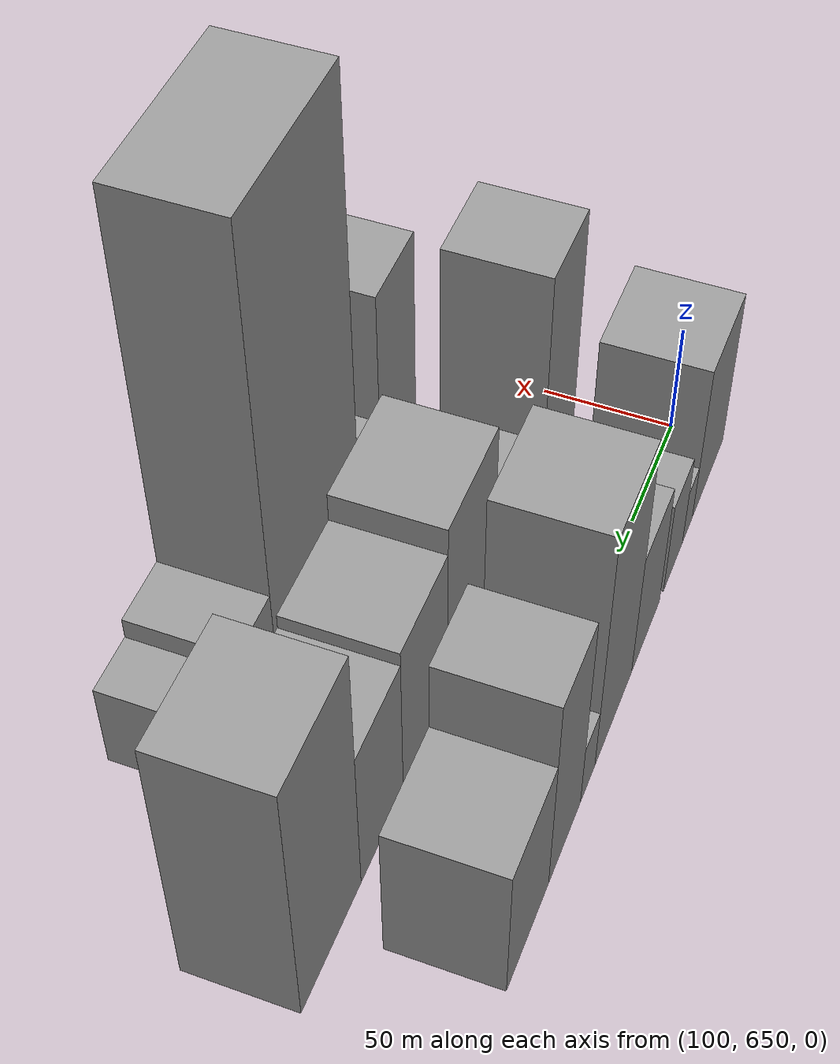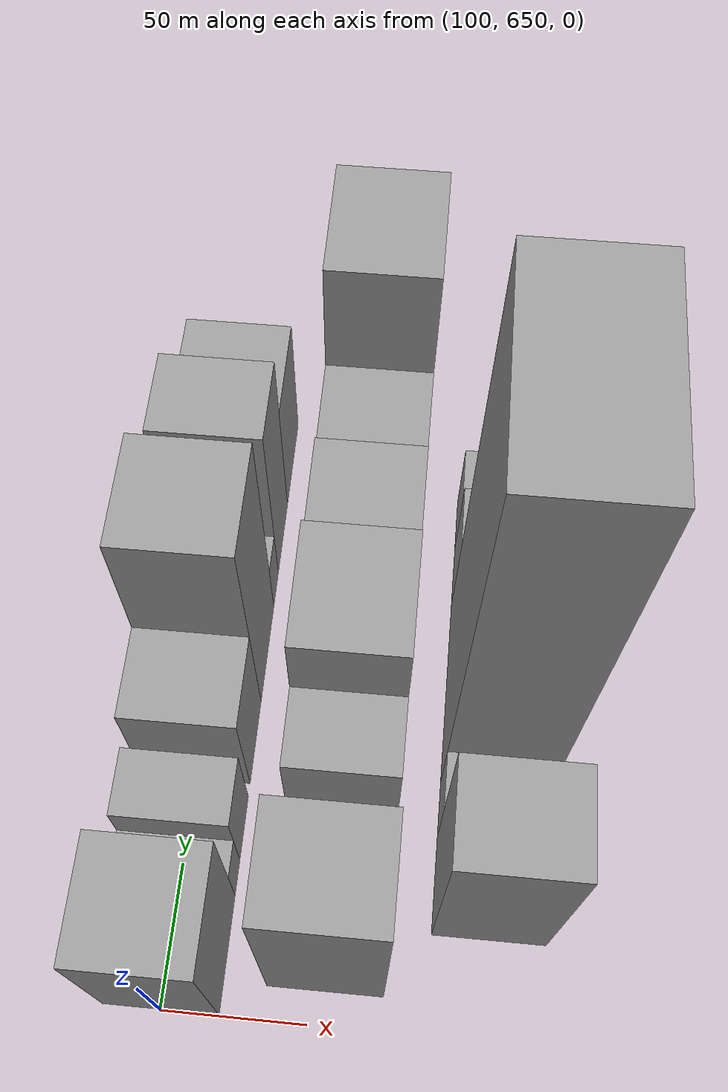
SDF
<sdf version="1.6">
 <world name="default">
  <model name="building_52">
   <static>1</static>
   <pose>100.0000 670.5384 0 0.000000 0.000000 0.000000</pose>
   <link name="link">
    <pose>0 0 37.50 0 0 0</pose>
    <collision name="collision"><geometry><box><size>40.0000 40.3753 75.0000</size></box></geometry></collision>
    <visual name="visual">
     <cast_shadows>0</cast_shadows>
     <geometry><box><size>40.0000 40.3753 75.0000</size></box></geometry>
     <material>
      <script>
       <uri>model://grey_wall/materials/scripts</uri>
       <uri>model://grey_wall/materials/textures</uri>
       <name>vrc/grey_wall</name>
      </script>
     </material>
    </visual>
   </link>
  </model>
  <model name="building_53">
   <static>1</static>
   <pose>100.0000 697.0407 0 0.000000 0.000000 0.000000</pose>
   <link name="link">
    <pose>0 0 13.50 0 0 0</pose>
    <collision name="collision"><geometry><box><size>40.0000 12.6293 27.0000</size></box></geometry></collision>
    <visual name="visual">
     <cast_shadows>0</cast_shadows>
     <geometry><box><size>40.0000 12.6293 27.0000</size></box></geometry>
     <material>
      <script>
       <uri>model://grey_wall/materials/scripts</uri>
       <uri>model://grey_wall/materials/textures</uri>
       <name>vrc/grey_wall</name>
      </script>
     </material>
    </visual>
   </link>
  </model>
  <model name="building_54">
   <static>1</static>
   <pose>100.0000 715.0363 0 0.000000 0.000000 0.000000</pose>
   <link name="link">
    <pose>0 0 22.50 0 0 0</pose>
    <collision name="collision"><geometry><box><size>40.0000 23.3619 45.0000</size></box></geometry></collision>
    <visual name="visual">
     <cast_shadows>0</cast_shadows>
     <geometry><box><size>40.0000 23.3619 45.0000</size></box></geometry>
     <material>
      <script>
       <uri>model://grey_wall/materials/scripts</uri>
       <uri>model://grey_wall/materials/textures</uri>
       <name>vrc/grey_wall</name>
      </script>
     </material>
    </visual>
   </link>
  </model>
  <model name="building_55">
   <static>1</static>
   <pose>100.0000 747.9944 0 0.000000 0.000000 0.000000</pose>
   <link name="link">
    <pose>0 0 30.00 0 0 0</pose>
    <collision name="collision"><geometry><box><size>40.0000 32.5543 60.0000</size></box></geometry></collision>
    <visual name="visual">
     <cast_shadows>0</cast_shadows>
     <geometry><box><size>40.0000 32.5543 60.0000</size></box></geometry>
     <material>
      <script>
       <uri>model://grey_wall/materials/scripts</uri>
       <uri>model://grey_wall/materials/textures</uri>
       <name>vrc/grey_wall</name>
      </script>
     </material>
    </visual>
   </link>
  </model>
  <model name="building_56">
   <static>1</static>
   <pose>100.0000 784.3968 0 0.000000 0.000000 0.000000</pose>
   <link name="link">
    <pose>0 0 58.50 0 0 0</pose>
    <collision name="collision"><geometry><box><size>40.0000 40.2505 117.0000</size></box></geometry></collision>
    <visual name="visual">
     <cast_shadows>0</cast_shadows>
     <geometry><box><size>40.0000 40.2505 117.0000</size></box></geometry>
     <material>
      <script>
       <uri>model://grey_wall/materials/scripts</uri>
       <uri>model://grey_wall/materials/textures</uri>
       <name>vrc/grey_wall</name>
      </script>
     </material>
    </visual>
   </link>
  </model>
  <model name="building_57">
   <static>1</static>
   <pose>100.0000 812.0516 0 0.000000 0.000000 0.000000</pose>
   <link name="link">
    <pose>0 0 15.00 0 0 0</pose>
    <collision name="collision"><geometry><box><size>40.0000 15.0590 30.0000</size></box></geometry></collision>
    <visual name="visual">
     <cast_shadows>0</cast_shadows>
     <geometry><box><size>40.0000 15.0590 30.0000</size></box></geometry>
     <material>
      <script>
       <uri>model://grey_wall/materials/scripts</uri>
       <uri>model://grey_wall/materials/textures</uri>
       <name>vrc/grey_wall</name>
      </script>
     </material>
    </visual>
   </link>
  </model>
  <model name="building_58">
   <static>1</static>
   <pose>100.0000 835.4757 0 0.000000 0.000000 0.000000</pose>
   <link name="link">
    <pose>0 0 48.00 0 0 0</pose>
    <collision name="collision"><geometry><box><size>40.0000 31.7892 96.0000</size></box></geometry></collision>
    <visual name="visual">
     <cast_shadows>0</cast_shadows>
     <geometry><box><size>40.0000 31.7892 96.0000</size></box></geometry>
     <material>
      <script>
       <uri>model://grey_wall/materials/scripts</uri>
       <uri>model://grey_wall/materials/textures</uri>
       <name>vrc/grey_wall</name>
      </script>
     </material>
    </visual>
   </link>
  </model>
  <model name="building_59">
   <static>1</static>
   <pose>100.0000 871.0971 0 0.000000 0.000000 0.000000</pose>
   <link name="link">
    <pose>0 0 33.00 0 0 0</pose>
    <collision name="collision"><geometry><box><size>40.0000 39.4536 66.0000</size></box></geometry></collision>
    <visual name="visual">
     <cast_shadows>0</cast_shadows>
     <geometry><box><size>40.0000 39.4536 66.0000</size></box></geometry>
     <material>
      <script>
       <uri>model://grey_wall/materials/scripts</uri>
       <uri>model://grey_wall/materials/textures</uri>
       <name>vrc/grey_wall</name>
      </script>
     </material>
    </visual>
   </link>
  </model>
  <model name="building_105">
   <static>1</static>
   <pose>155.0000 679.4406 0 0.000000 0.000000 0.000000</pose>
   <link name="link">
    <pose>0 0 52.50 0 0 0</pose>
    <collision name="collision"><geometry><box><size>40.0000 36.4175 105.0000</size></box></geometry></collision>
    <visual name="visual">
     <cast_shadows>0</cast_shadows>
     <geometry><box><size>40.0000 36.4175 105.0000</size></box></geometry>
     <material>
      <script>
       <uri>model://grey_wall/materials/scripts</uri>
       <uri>model://grey_wall/materials/textures</uri>
       <name>vrc/grey_wall</name>
      </script>
     </material>
    </visual>
   </link>
  </model>
  <model name="building_106">
   <static>1</static>
   <pose>155.0000 711.8317 0 0.000000 0.000000 0.000000</pose>
   <link name="link">
    <pose>0 0 13.50 0 0 0</pose>
    <collision name="collision"><geometry><box><size>40.0000 12.3648 27.0000</size></box></geometry></collision>
    <visual name="visual">
     <cast_shadows>0</cast_shadows>
     <geometry><box><size>40.0000 12.3648 27.0000</size></box></geometry>
     <material>
      <script>
       <uri>model://grey_wall/materials/scripts</uri>
       <uri>model://grey_wall/materials/textures</uri>
       <name>vrc/grey_wall</name>
      </script>
     </material>
    </visual>
   </link>
  </model>
  <model name="building_107">
   <static>1</static>
   <pose>155.0000 736.0776 0 0.000000 0.000000 0.000000</pose>
   <link name="link">
    <pose>0 0 27.00 0 0 0</pose>
    <collision name="collision"><geometry><box><size>40.0000 28.1271 54.0000</size></box></geometry></collision>
    <visual name="visual">
     <cast_shadows>0</cast_shadows>
     <geometry><box><size>40.0000 28.1271 54.0000</size></box></geometry>
     <material>
      <script>
       <uri>model://grey_wall/materials/scripts</uri>
       <uri>model://grey_wall/materials/textures</uri>
       <name>vrc/grey_wall</name>
      </script>
     </material>
    </visual>
   </link>
  </model>
  <model name="building_108">
   <static>1</static>
   <pose>155.0000 772.9094 0 0.000000 0.000000 0.000000</pose>
   <link name="link">
    <pose>0 0 43.50 0 0 0</pose>
    <collision name="collision"><geometry><box><size>40.0000 45.5365 87.0000</size></box></geometry></collision>
    <visual name="visual">
     <cast_shadows>0</cast_shadows>
     <geometry><box><size>40.0000 45.5365 87.0000</size></box></geometry>
     <material>
      <script>
       <uri>model://grey_wall/materials/scripts</uri>
       <uri>model://grey_wall/materials/textures</uri>
       <name>vrc/grey_wall</name>
      </script>
     </material>
    </visual>
   </link>
  </model>
  <model name="building_109">
   <static>1</static>
   <pose>155.0000 815.8161 0 0.000000 0.000000 0.000000</pose>
   <link name="link">
    <pose>0 0 37.50 0 0 0</pose>
    <collision name="collision"><geometry><box><size>40.0000 40.2768 75.0000</size></box></geometry></collision>
    <visual name="visual">
     <cast_shadows>0</cast_shadows>
     <geometry><box><size>40.0000 40.2768 75.0000</size></box></geometry>
     <material>
      <script>
       <uri>model://grey_wall/materials/scripts</uri>
       <uri>model://grey_wall/materials/textures</uri>
       <name>vrc/grey_wall</name>
      </script>
     </material>
    </visual>
   </link>
  </model>
  <model name="building_110">
   <static>1</static>
   <pose>155.0000 854.0001 0 0.000000 0.000000 0.000000</pose>
   <link name="link">
    <pose>0 0 34.50 0 0 0</pose>
    <collision name="collision"><geometry><box><size>40.0000 36.0911 69.0000</size></box></geometry></collision>
    <visual name="visual">
     <cast_shadows>0</cast_shadows>
     <geometry><box><size>40.0000 36.0911 69.0000</size></box></geometry>
     <material>
      <script>
       <uri>model://grey_wall/materials/scripts</uri>
       <uri>model://grey_wall/materials/textures</uri>
       <name>vrc/grey_wall</name>
      </script>
     </material>
    </visual>
   </link>
  </model>
  <model name="building_111">
   <static>1</static>
   <pose>155.0000 895.8125 0 0.000000 0.000000 0.000000</pose>
   <link name="link">
    <pose>0 0 60.00 0 0 0</pose>
    <collision name="collision"><geometry><box><size>40.0000 47.5338 120.0000</size></box></geometry></collision>
    <visual name="visual">
     <cast_shadows>0</cast_shadows>
     <geometry><box><size>40.0000 47.5338 120.0000</size></box></geometry>
     <material>
      <script>
       <uri>model://grey_wall/materials/scripts</uri>
       <uri>model://grey_wall/materials/textures</uri>
       <name>vrc/grey_wall</name>
      </script>
     </material>
    </visual>
   </link>
  </model>
  <model name="building_157">
   <static>1</static>
   <pose>210.0000 700.7204 0 0.000000 0.000000 0.000000</pose>
   <link name="link">
    <pose>0 0 48.00 0 0 0</pose>
    <collision name="collision"><geometry><box><size>40.0000 34.5629 96.0000</size></box></geometry></collision>
    <visual name="visual">
     <cast_shadows>0</cast_shadows>
     <geometry><box><size>40.0000 34.5629 96.0000</size></box></geometry>
     <material>
      <script>
       <uri>model://grey_wall/materials/scripts</uri>
       <uri>model://grey_wall/materials/textures</uri>
       <name>vrc/grey_wall</name>
      </script>
     </material>
    </visual>
   </link>
  </model>
  <model name="building_158">
   <static>1</static>
   <pose>210.0000 728.2516 0 0.000000 0.000000 0.000000</pose>
   <link name="link">
    <pose>0 0 18.00 0 0 0</pose>
    <collision name="collision"><geometry><box><size>40.0000 20.4996 36.0000</size></box></geometry></collision>
    <visual name="visual">
     <cast_shadows>0</cast_shadows>
     <geometry><box><size>40.0000 20.4996 36.0000</size></box></geometry>
     <material>
      <script>
       <uri>model://grey_wall/materials/scripts</uri>
       <uri>model://grey_wall/materials/textures</uri>
       <name>vrc/grey_wall</name>
      </script>
     </material>
    </visual>
   </link>
  </model>
  <model name="building_159">
   <static>1</static>
   <pose>210.0000 774.8566 0 0.000000 0.000000 0.000000</pose>
   <link name="link">
    <pose>0 0 103.50 0 0 0</pose>
    <collision name="collision"><geometry><box><size>40.0000 72.7103 207.0000</size></box></geometry></collision>
    <visual name="visual">
     <cast_shadows>0</cast_shadows>
     <geometry><box><size>40.0000 72.7103 207.0000</size></box></geometry>
     <material>
      <script>
       <uri>model://grey_wall/materials/scripts</uri>
       <uri>model://grey_wall/materials/textures</uri>
       <name>vrc/grey_wall</name>
      </script>
     </material>
    </visual>
   </link>
  </model>
  <model name="building_160">
   <static>1</static>
   <pose>210.0000 823.9241 0 0.000000 0.000000 0.000000</pose>
   <link name="link">
    <pose>0 0 24.00 0 0 0</pose>
    <collision name="collision"><geometry><box><size>40.0000 25.4247 48.0000</size></box></geometry></collision>
    <visual name="visual">
     <cast_shadows>0</cast_shadows>
     <geometry><box><size>40.0000 25.4247 48.0000</size></box></geometry>
     <material>
      <script>
       <uri>model://grey_wall/materials/scripts</uri>
       <uri>model://grey_wall/materials/textures</uri>
       <name>vrc/grey_wall</name>
      </script>
     </material>
    </visual>
   </link>
  </model>
  <model name="building_161">
   <static>1</static>
   <pose>210.0000 847.8609 0 0.000000 0.000000 0.000000</pose>
   <link name="link">
    <pose>0 0 19.50 0 0 0</pose>
    <collision name="collision"><geometry><box><size>40.0000 22.4490 39.0000</size></box></geometry></collision>
    <visual name="visual">
     <cast_shadows>0</cast_shadows>
     <geometry><box><size>40.0000 22.4490 39.0000</size></box></geometry>
     <material>
      <script>
       <uri>model://grey_wall/materials/scripts</uri>
       <uri>model://grey_wall/materials/textures</uri>
       <name>vrc/grey_wall</name>
      </script>
     </material>
    </visual>
   </link>
  </model>
 </world>
</sdf>
